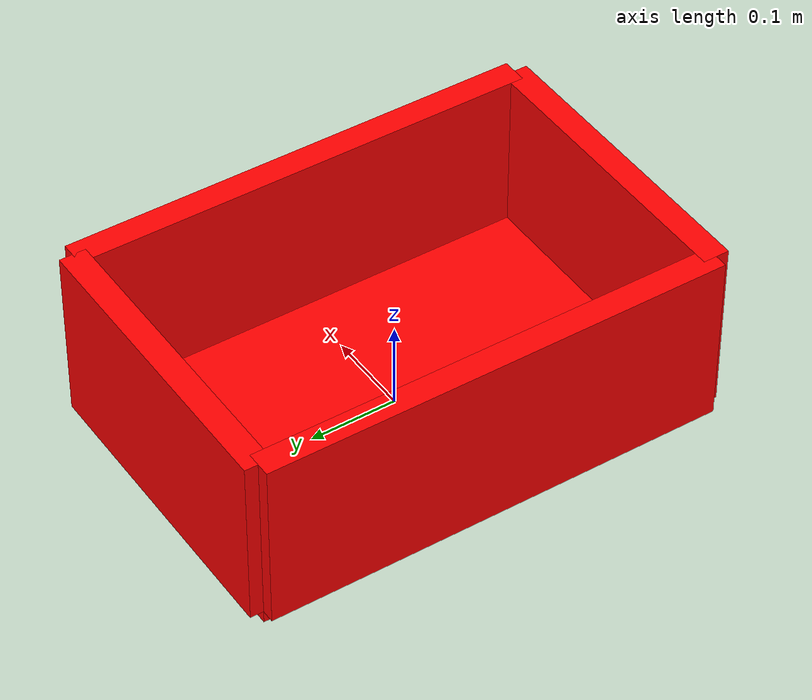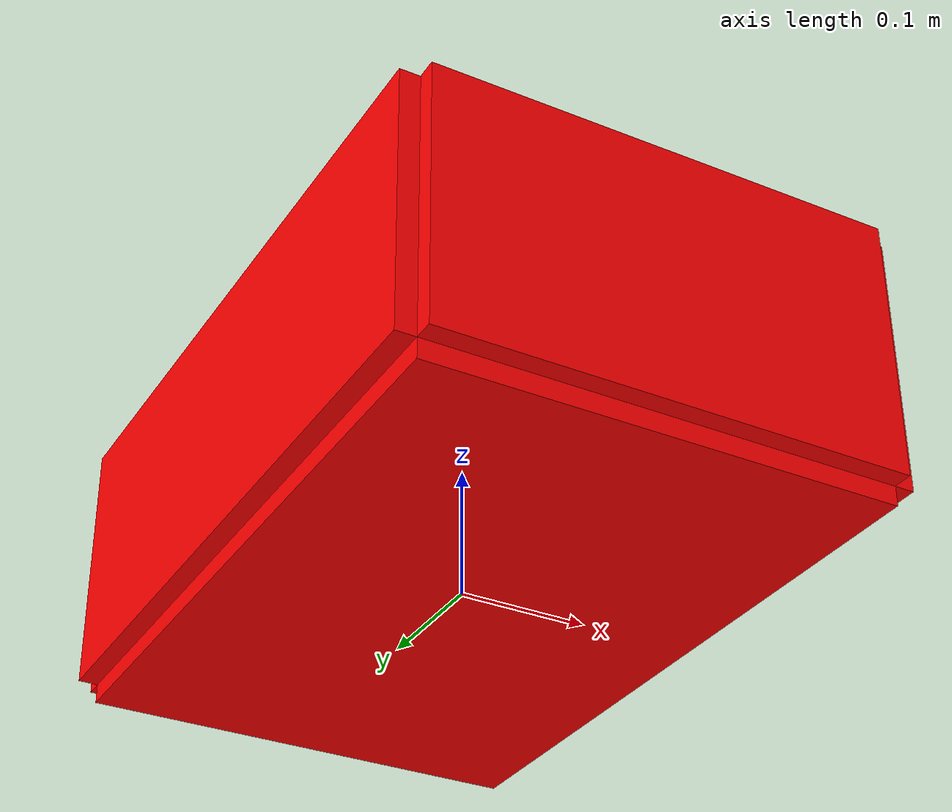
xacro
<?xml version="1.0"?>
<robot xmlns:xacro="http://ros.org/wiki/xacro" name="order_bin">

  <xacro:property name="x_size" value=".35" />
  <xacro:property name="y_size" value=".53" />
  <xacro:property name="z_size" value=".20" />
  <xacro:property name="x_part_size" value="      .03 ${y_size} ${z_size}" />
  <xacro:property name="y_part_size" value="${x_size}       .03 ${z_size}" />
  <xacro:property name="z_part_size" value="${x_size} ${y_size}      .03" />

  <material name="red">
    <color rgba="1 0 0 1"/>
  </material>

  <link name="order_bin_base">
    <visual>
      <origin rpy="0 0 0" xyz="0 0 0"/>
      <geometry><box size="${z_part_size}"/></geometry>
      <material name="red" />
    </visual>
    <collision>
      <origin rpy="0 0 0" xyz="0 0 0"/>
      <geometry><box size="${z_part_size}"/></geometry>
      <material name="red" />
    </collision>
    <inertial>
      <mass value="0.08" />
      <inertia ixx="1e-4" iyy="1e-4" izz="1e-4" ixy="0" ixz="0" iyz="0" />
    </inertial>
  </link>
  <gazebo reference="order_bin_base">
    <material>Gazebo/Red</material>
  </gazebo>

  <joint name="base_to_x_part0" type="fixed">
    <origin rpy="0 0 0" xyz="${-x_size/2} 0 ${z_size/2}"/>
    <parent link="order_bin_base"/>
    <child link="order_bin_x_part0"/>
  </joint>
  <link name="order_bin_x_part0">
    <visual>
      <origin rpy="0 0 0" xyz="0 0 0"/>
      <geometry><box size="${x_part_size}"/></geometry>
      <material name="red" />
    </visual>
    <collision>
      <origin rpy="0 0 0" xyz="0 0 0"/>
      <geometry><box size="${x_part_size}"/></geometry>
      <material name="red" />
    </collision>
    <inertial>
      <mass value="0.08" />
      <inertia ixx="1e-4" iyy="1e-4" izz="1e-4" ixy="0" ixz="0" iyz="0" />
    </inertial>
  </link>
  <gazebo reference="order_bin_x_part0">
    <material>Gazebo/Red</material>
  </gazebo>

  <joint name="base_to_x_part1" type="fixed">
    <origin rpy="0 0 0" xyz="${x_size/2} 0 ${z_size/2}"/>
    <parent link="order_bin_base"/>
    <child link="order_bin_x_part1"/>
  </joint>
  <link name="order_bin_x_part1">
    <visual>
      <origin rpy="0 0 0" xyz="0 0 0"/>
      <geometry><box size="${x_part_size}"/></geometry>
      <material name="red" />
    </visual>
    <collision>
      <origin rpy="0 0 0" xyz="0 0 0"/>
      <geometry><box size="${x_part_size}"/></geometry>
      <material name="red" />
    </collision>
    <inertial>
      <mass value="0.08" />
      <inertia ixx="1e-4" iyy="1e-4" izz="1e-4" ixy="0" ixz="0" iyz="0" />
    </inertial>
  </link>
  <gazebo reference="order_bin_x_part1">
    <material>Gazebo/Red</material>
  </gazebo>

  <joint name="base_to_y_part0" type="fixed">
    <origin rpy="0 0 0" xyz="0 ${-y_size/2} ${z_size/2}"/>
    <parent link="order_bin_base"/>
    <child link="order_bin_y_part0"/>
  </joint>
  <link name="order_bin_y_part0">
    <visual>
      <origin rpy="0 0 0" xyz="0 0 0"/>
      <geometry><box size="${y_part_size}"/></geometry>
      <material name="red" />
    </visual>
    <collision>
      <origin rpy="0 0 0" xyz="0 0 0"/>
      <geometry><box size="${y_part_size}"/></geometry>
      <material name="red" />
    </collision>
    <inertial>
      <mass value="0.08" />
      <inertia ixx="1e-4" iyy="1e-4" izz="1e-4" ixy="0" ixz="0" iyz="0" />
    </inertial>
  </link>
  <gazebo reference="order_bin_y_part0">
    <material>Gazebo/Red</material>
  </gazebo>

  <joint name="base_to_y_part1" type="fixed">
    <origin rpy="0 0 0" xyz="0 ${y_size/2} ${z_size/2}"/>
    <parent link="order_bin_base"/>
    <child link="order_bin_y_part1"/>
  </joint>
  <link name="order_bin_y_part1">
    <visual>
      <origin rpy="0 0 0" xyz="0 0 0"/>
      <geometry><box size="${y_part_size}"/></geometry>
      <material name="red" />
    </visual>
    <collision>
      <origin rpy="0 0 0" xyz="0 0 0"/>
      <geometry><box size="${y_part_size}"/></geometry>
      <material name="red" />
    </collision>
    <inertial>
      <mass value="0.08" />
      <inertia ixx="1e-4" iyy="1e-4" izz="1e-4" ixy="0" ixz="0" iyz="0" />
    </inertial>
  </link>
  <gazebo reference="order_bin_y_part1">
    <material>Gazebo/Red</material>
  </gazebo>

</robot>
